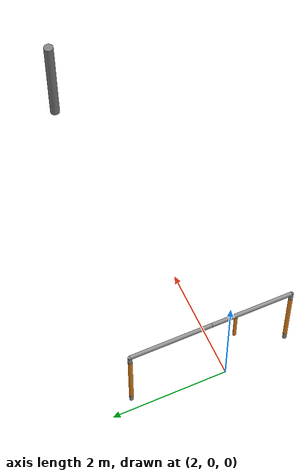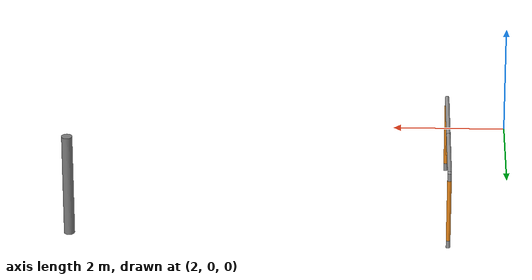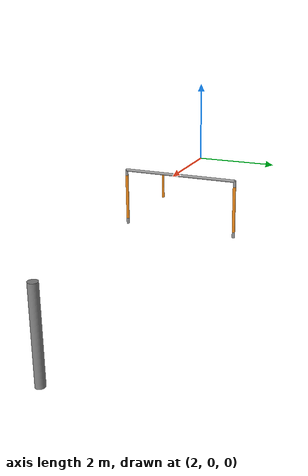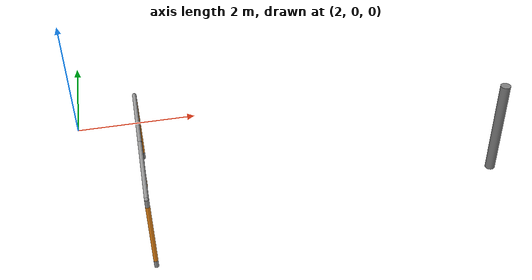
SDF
<sdf version="1.8">
 <world name="competition">
  <scene>
   <grid>false</grid>
   <ambient>0.4 0.4 0.4 1.0</ambient>
   <background>0.0 0.4 0.7 1.0</background>
   <shadows>true</shadows>
  </scene>
  <light type="directional" name="sun">
   <pose>0 0 10 0 0 0</pose>
   <diffuse>0.8 0.8 0.8 1</diffuse>
   <specular>0.2 0.2 0.2 1</specular>
   <direction>-0.5 0.1 -0.9</direction>
   <attenuation>
    <range>1000</range>
    <constant>0.9</constant>
    <linear>0.01</linear>
    <quadratic>0.001</quadratic>
   </attenuation>
  </light>
  <plugin filename="gz-sim-physics-system" name="gz::sim::systems::Physics"/>
  <plugin filename="gz-sim-user-commands-system" name="gz::sim::systems::UserCommands"/>
  <plugin filename="gz-sim-scene-broadcaster-system" name="gz::sim::systems::SceneBroadcaster"/>
  <plugin filename="gz-sim-sensors-system" name="gz::sim::systems::Sensors">
   <render_engine>ogre2</render_engine>
  </plugin>
  <plugin filename="gz-sim-imu-system" name="gz::sim::systems::Imu"/>
  <plugin filename="gz-sim-buoyancy-system" name="gz::sim::systems::Buoyancy">
   <graded_buoyancy>
    <default_density>1025</default_density>
    <density_change><above_depth>0</above_depth><density>1.125</density></density_change>
   </graded_buoyancy>
  </plugin>
  <physics name="1ms" type="dart">
   <max_step_size>0.02</max_step_size>
   <real_time_factor>1</real_time_factor>
  </physics>
  <include><pose>3 -1 -0.25 0 0 0</pose><uri>model://prequalification_gate</uri></include>
  <include><pose>10 0 -1.25 0 0 0</pose><uri>model://prequalification_marker</uri></include>
 </world>
</sdf>

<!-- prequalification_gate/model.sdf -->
<sdf version='1.7'>
  <model name='gate'>
    <link name='component_rt'>
      <inertial>
        <mass>10</mass>
        <inertia>
          <ixx>0.145833</ixx>
          <ixy>0</ixy>
          <ixz>0</ixz>
          <iyy>0.145833</iyy>
          <iyz>0</iyz>
          <izz>0.125</izz>
        </inertia>
        <pose>0 0 0 0 -0 0</pose>
      </inertial>
      <pose>0 1.52 -0.000146 1.5707 -0 0</pose>
      <self_collide>0</self_collide>
      <enable_wind>0</enable_wind>
      <kinematic>0</kinematic>
      <gravity>0</gravity>
      <visual name='visual'>
        <pose>0 0 0 0 -0 0</pose>
        <geometry>
          <cylinder>
            <radius>0.0381</radius>
            <length>1.52</length>
          </cylinder>
        </geometry>
        <material>
          <lighting>1</lighting>
          <script>
            <uri>file://media/materials/scripts/gazebo.material</uri>
            <name>Gazebo/Grey</name>
          </script>
          <shader type='pixel'/>
          <emissive>0 0 0 1</emissive>
        </material>
        <transparency>0</transparency>
        <cast_shadows>1</cast_shadows>
      </visual>
      <collision name='collision'>
        <laser_retro>0</laser_retro>
        <max_contacts>10</max_contacts>
        <pose>0 0 0 0 -0 0</pose>
        <geometry>
          <cylinder>
            <radius>0.0381</radius>
            <length>1.52</length>
          </cylinder>
        </geometry>
        <surface>
          <friction>
            <ode>
              <mu>1</mu>
              <mu2>1</mu2>
              <fdir1>0 0 0</fdir1>
              <slip1>0</slip1>
              <slip2>0</slip2>
            </ode>
            <torsional>
              <coefficient>1</coefficient>
              <patch_radius>0</patch_radius>
              <surface_radius>0</surface_radius>
              <use_patch_radius>1</use_patch_radius>
              <ode>
                <slip>0</slip>
              </ode>
            </torsional>
          </friction>
          <bounce>
            <restitution_coefficient>0</restitution_coefficient>
            <threshold>1e+06</threshold>
          </bounce>
          <contact>
            <collide_without_contact>0</collide_without_contact>
            <collide_without_contact_bitmask>1</collide_without_contact_bitmask>
            <collide_bitmask>1</collide_bitmask>
            <ode>
              <soft_cfm>0</soft_cfm>
              <soft_erp>0.2</soft_erp>
              <kp>1e+13</kp>
              <kd>1</kd>
              <max_vel>0.01</max_vel>
              <min_depth>0</min_depth>
            </ode>
            <bullet>
              <split_impulse>1</split_impulse>
              <split_impulse_penetration_threshold>-0.01</split_impulse_penetration_threshold>
              <soft_cfm>0</soft_cfm>
              <soft_erp>0.2</soft_erp>
              <kp>1e+13</kp>
              <kd>1</kd>
            </bullet>
          </contact>
        </surface>
      </collision>
    </link>
    <link name='component_lb'>
      <inertial>
        <mass>10</mass>
        <inertia>
          <ixx>0.145833</ixx>
          <ixy>0</ixy>
          <ixz>0</ixz>
          <iyy>0.145833</iyy>
          <iyz>0</iyz>
          <izz>0.125</izz>
        </inertia>
        <pose>0 0 0 0 -0 0</pose>
      </inertial>
      <pose>-0 -0.760073 -0.759927 0 -0 0</pose>
      <self_collide>0</self_collide>
      <enable_wind>0</enable_wind>
      <kinematic>0</kinematic>
      <gravity>0</gravity>
      <visual name='visual'>
        <pose>0 0 0 0 -0 0</pose>
        <geometry>
          <cylinder>
            <radius>0.0381</radius>
            <length>1.52</length>
          </cylinder>
        </geometry>
        <material>
          <lighting>1</lighting>
          <script>
            <uri>file://media/materials/scripts/gazebo.material</uri>
            <name>Gazebo/Grey</name>
          </script>
          <shader type='pixel'/>
          <emissive>0 0 0 1</emissive>
        </material>
        <transparency>0</transparency>
        <cast_shadows>1</cast_shadows>
      </visual>
      <collision name='collision'>
        <laser_retro>0</laser_retro>
        <max_contacts>10</max_contacts>
        <pose>0 0 0 0 -0 0</pose>
        <geometry>
          <cylinder>
            <radius>0.0381</radius>
            <length>1.52</length>
          </cylinder>
        </geometry>
        <surface>
          <friction>
            <ode>
              <mu>1</mu>
              <mu2>1</mu2>
              <fdir1>0 0 0</fdir1>
              <slip1>0</slip1>
              <slip2>0</slip2>
            </ode>
            <torsional>
              <coefficient>1</coefficient>
              <patch_radius>0</patch_radius>
              <surface_radius>0</surface_radius>
              <use_patch_radius>1</use_patch_radius>
              <ode>
                <slip>0</slip>
              </ode>
            </torsional>
          </friction>
          <bounce>
            <restitution_coefficient>0</restitution_coefficient>
            <threshold>1e+06</threshold>
          </bounce>
          <contact>
            <collide_without_contact>0</collide_without_contact>
            <collide_without_contact_bitmask>1</collide_without_contact_bitmask>
            <collide_bitmask>1</collide_bitmask>
            <ode>
              <soft_cfm>0</soft_cfm>
              <soft_erp>0.2</soft_erp>
              <kp>1e+13</kp>
              <kd>1</kd>
              <max_vel>0.01</max_vel>
              <min_depth>0</min_depth>
            </ode>
            <bullet>
              <split_impulse>1</split_impulse>
              <split_impulse_penetration_threshold>-0.01</split_impulse_penetration_threshold>
              <soft_cfm>0</soft_cfm>
              <soft_erp>0.2</soft_erp>
              <kp>1e+13</kp>
              <kd>1</kd>
            </bullet>
          </contact>
        </surface>
      </collision>
    </link>
    <link name='component_lt'>
      <inertial>
        <mass>10</mass>
        <inertia>
          <ixx>0.145833</ixx>
          <ixy>0</ixy>
          <ixz>0</ixz>
          <iyy>0.145833</iyy>
          <iyz>0</iyz>
          <izz>0.125</izz>
        </inertia>
        <pose>0 0 0 0 -0 0</pose>
      </inertial>
      <pose>0 0 0 1.5707 -0 0</pose>
      <self_collide>0</self_collide>
      <enable_wind>0</enable_wind>
      <kinematic>0</kinematic>
      <gravity>0</gravity>
      <visual name='visual'>
        <pose>0 0 0 0 -0 0</pose>
        <geometry>
          <cylinder>
            <radius>0.0381</radius>
            <length>1.52</length>
          </cylinder>
        </geometry>
        <material>
          <lighting>1</lighting>
          <script>
            <uri>file://media/materials/scripts/gazebo.material</uri>
            <name>Gazebo/Grey</name>
          </script>
          <shader type='pixel'/>
          <emissive>0 0 0 1</emissive>
        </material>
        <transparency>0</transparency>
        <cast_shadows>1</cast_shadows>
      </visual>
      <collision name='collision'>
        <laser_retro>0</laser_retro>
        <max_contacts>10</max_contacts>
        <pose>0 0 0 0 -0 0</pose>
        <geometry>
          <cylinder>
            <radius>0.0381</radius>
            <length>1.52</length>
          </cylinder>
        </geometry>
        <surface>
          <friction>
            <ode>
              <mu>1</mu>
              <mu2>1</mu2>
              <fdir1>0 0 0</fdir1>
              <slip1>0</slip1>
              <slip2>0</slip2>
            </ode>
            <torsional>
              <coefficient>1</coefficient>
              <patch_radius>0</patch_radius>
              <surface_radius>0</surface_radius>
              <use_patch_radius>1</use_patch_radius>
              <ode>
                <slip>0</slip>
              </ode>
            </torsional>
          </friction>
          <bounce>
            <restitution_coefficient>0</restitution_coefficient>
            <threshold>1e+06</threshold>
          </bounce>
          <contact>
            <collide_without_contact>0</collide_without_contact>
            <collide_without_contact_bitmask>1</collide_without_contact_bitmask>
            <collide_bitmask>1</collide_bitmask>
            <ode>
              <soft_cfm>0</soft_cfm>
              <soft_erp>0.2</soft_erp>
              <kp>1e+13</kp>
              <kd>1</kd>
              <max_vel>0.01</max_vel>
              <min_depth>0</min_depth>
            </ode>
            <bullet>
              <split_impulse>1</split_impulse>
              <split_impulse_penetration_threshold>-0.01</split_impulse_penetration_threshold>
              <soft_cfm>0</soft_cfm>
              <soft_erp>0.2</soft_erp>
              <kp>1e+13</kp>
              <kd>1</kd>
            </bullet>
          </contact>
        </surface>
      </collision>
    </link>
    <link name='component_rb'>
      <inertial>
        <mass>10</mass>
        <inertia>
          <ixx>0.145833</ixx>
          <ixy>0</ixy>
          <ixz>0</ixz>
          <iyy>0.145833</iyy>
          <iyz>0</iyz>
          <izz>0.125</izz>
        </inertia>
        <pose>0 0 0 0 -0 0</pose>
      </inertial>
      <pose>0 2.27993 -0.76022 0 -0 0</pose>
      <self_collide>0</self_collide>
      <enable_wind>0</enable_wind>
      <kinematic>0</kinematic>
      <gravity>0</gravity>
      <visual name='visual'>
        <pose>0 0 0 0 -0 0</pose>
        <geometry>
          <cylinder>
            <radius>0.0381</radius>
            <length>1.52</length>
          </cylinder>
        </geometry>
        <material>
          <lighting>1</lighting>
          <script>
            <uri>file://media/materials/scripts/gazebo.material</uri>
            <name>Gazebo/Grey</name>
          </script>
          <shader type='pixel'/>
          <emissive>0 0 0 1</emissive>
        </material>
        <transparency>0</transparency>
        <cast_shadows>1</cast_shadows>
      </visual>
      <collision name='collision'>
        <laser_retro>0</laser_retro>
        <max_contacts>10</max_contacts>
        <pose>0 0 0 0 -0 0</pose>
        <geometry>
          <cylinder>
            <radius>0.0381</radius>
            <length>1.52</length>
          </cylinder>
        </geometry>
        <surface>
          <friction>
            <ode>
              <mu>1</mu>
              <mu2>1</mu2>
              <fdir1>0 0 0</fdir1>
              <slip1>0</slip1>
              <slip2>0</slip2>
            </ode>
            <torsional>
              <coefficient>1</coefficient>
              <patch_radius>0</patch_radius>
              <surface_radius>0</surface_radius>
              <use_patch_radius>1</use_patch_radius>
              <ode>
                <slip>0</slip>
              </ode>
            </torsional>
          </friction>
          <bounce>
            <restitution_coefficient>0</restitution_coefficient>
            <threshold>1e+06</threshold>
          </bounce>
          <contact>
            <collide_without_contact>0</collide_without_contact>
            <collide_without_contact_bitmask>1</collide_without_contact_bitmask>
            <collide_bitmask>1</collide_bitmask>
            <ode>
              <soft_cfm>0</soft_cfm>
              <soft_erp>0.2</soft_erp>
              <kp>1e+13</kp>
              <kd>1</kd>
              <max_vel>0.01</max_vel>
              <min_depth>0</min_depth>
            </ode>
            <bullet>
              <split_impulse>1</split_impulse>
              <split_impulse_penetration_threshold>-0.01</split_impulse_penetration_threshold>
              <soft_cfm>0</soft_cfm>
              <soft_erp>0.2</soft_erp>
              <kp>1e+13</kp>
              <kd>1</kd>
            </bullet>
          </contact>
        </surface>
      </collision>
    </link>
    <link name='corner_l'>
      <inertial>
        <mass>1</mass>
        <inertia>
          <ixx>0.1</ixx>
          <ixy>0</ixy>
          <ixz>0</ixz>
          <iyy>0.1</iyy>
          <iyz>0</iyz>
          <izz>0.1</izz>
        </inertia>
        <pose>0 0 0 0 -0 0</pose>
      </inertial>
      <pose>-0 2.28 -0.000219 1.5707 -0 0</pose>
      <gravity>0</gravity>
      <self_collide>0</self_collide>
      <kinematic>0</kinematic>
      <enable_wind>0</enable_wind>
      <visual name='visual'>
        <pose>0 0 0 0 -0 0</pose>
        <geometry>
          <sphere>
            <radius>0.038</radius>
          </sphere>
        </geometry>
        <material>
          <lighting>1</lighting>
          <script>
            <uri>file://media/materials/scripts/gazebo.material</uri>
            <name>Gazebo/Grey</name>
          </script>
          <shader type='pixel'/>
          <emissive>0 0 0 1</emissive>
        </material>
        <transparency>0</transparency>
        <cast_shadows>1</cast_shadows>
      </visual>
      <collision name='collision'>
        <laser_retro>0</laser_retro>
        <max_contacts>10</max_contacts>
        <pose>0 0 0 0 -0 0</pose>
        <geometry>
          <sphere>
            <radius>0.0381</radius>
          </sphere>
        </geometry>
        <surface>
          <friction>
            <ode>
              <mu>1</mu>
              <mu2>1</mu2>
              <fdir1>0 0 0</fdir1>
              <slip1>0</slip1>
              <slip2>0</slip2>
            </ode>
            <torsional>
              <coefficient>1</coefficient>
              <patch_radius>0</patch_radius>
              <surface_radius>0</surface_radius>
              <use_patch_radius>1</use_patch_radius>
              <ode>
                <slip>0</slip>
              </ode>
            </torsional>
          </friction>
          <bounce>
            <restitution_coefficient>0</restitution_coefficient>
            <threshold>1e+06</threshold>
          </bounce>
          <contact>
            <collide_without_contact>0</collide_without_contact>
            <collide_without_contact_bitmask>1</collide_without_contact_bitmask>
            <collide_bitmask>1</collide_bitmask>
            <ode>
              <soft_cfm>0</soft_cfm>
              <soft_erp>0.2</soft_erp>
              <kp>1e+13</kp>
              <kd>1</kd>
              <max_vel>0.01</max_vel>
              <min_depth>0</min_depth>
            </ode>
            <bullet>
              <split_impulse>1</split_impulse>
              <split_impulse_penetration_threshold>-0.01</split_impulse_penetration_threshold>
              <soft_cfm>0</soft_cfm>
              <soft_erp>0.2</soft_erp>
              <kp>1e+13</kp>
              <kd>1</kd>
            </bullet>
          </contact>
        </surface>
      </collision>
    </link>
    <link name='corner_r'>
      <inertial>
        <mass>1</mass>
        <inertia>
          <ixx>0.1</ixx>
          <ixy>0</ixy>
          <ixz>0</ixz>
          <iyy>0.1</iyy>
          <iyz>0</iyz>
          <izz>0.1</izz>
        </inertia>
        <pose>0 0 0 0 -0 0</pose>
      </inertial>
      <pose>0 -0.76 -0 0 -0 0</pose>
      <gravity>0</gravity>
      <self_collide>0</self_collide>
      <kinematic>0</kinematic>
      <enable_wind>0</enable_wind>
      <visual name='visual'>
        <pose>0 0 0 0 -0 0</pose>
        <geometry>
          <sphere>
            <radius>0.038</radius>
          </sphere>
        </geometry>
        <material>
          <lighting>1</lighting>
          <script>
            <uri>file://media/materials/scripts/gazebo.material</uri>
            <name>Gazebo/Grey</name>
          </script>
          <shader type='pixel'/>
          <emissive>0 0 0 1</emissive>
        </material>
        <transparency>0</transparency>
        <cast_shadows>1</cast_shadows>
      </visual>
      <collision name='collision'>
        <laser_retro>0</laser_retro>
        <max_contacts>10</max_contacts>
        <pose>0 0 0 0 -0 0</pose>
        <geometry>
          <sphere>
            <radius>0.0381</radius>
          </sphere>
        </geometry>
        <surface>
          <friction>
            <ode>
              <mu>1</mu>
              <mu2>1</mu2>
              <fdir1>0 0 0</fdir1>
              <slip1>0</slip1>
              <slip2>0</slip2>
            </ode>
            <torsional>
              <coefficient>1</coefficient>
              <patch_radius>0</patch_radius>
              <surface_radius>0</surface_radius>
              <use_patch_radius>1</use_patch_radius>
              <ode>
                <slip>0</slip>
              </ode>
            </torsional>
          </friction>
          <bounce>
            <restitution_coefficient>0</restitution_coefficient>
            <threshold>1e+06</threshold>
          </bounce>
          <contact>
            <collide_without_contact>0</collide_without_contact>
            <collide_without_contact_bitmask>1</collide_without_contact_bitmask>
            <collide_bitmask>1</collide_bitmask>
            <ode>
              <soft_cfm>0</soft_cfm>
              <soft_erp>0.2</soft_erp>
              <kp>1e+13</kp>
              <kd>1</kd>
              <max_vel>0.01</max_vel>
              <min_depth>0</min_depth>
            </ode>
            <bullet>
              <split_impulse>1</split_impulse>
              <split_impulse_penetration_threshold>-0.01</split_impulse_penetration_threshold>
              <soft_cfm>0</soft_cfm>
              <soft_erp>0.2</soft_erp>
              <kp>1e+13</kp>
              <kd>1</kd>
            </bullet>
          </contact>
        </surface>
      </collision>
    </link>
    <link name='jacket_l'>
      <inertial>
        <mass>10</mass>
        <inertia>
          <ixx>0.145833</ixx>
          <ixy>0</ixy>
          <ixz>0</ixz>
          <iyy>0.145833</iyy>
          <iyz>0</iyz>
          <izz>0.125</izz>
        </inertia>
        <pose>0 0 0 0 -0 0</pose>
      </inertial>
      <pose>-0 -0.760073 -0.759927 0 -0 0</pose>
      <self_collide>0</self_collide>
      <enable_wind>0</enable_wind>
      <kinematic>0</kinematic>
      <gravity>0</gravity>
      <visual name='visual'>
        <pose>0 0 0 0 -0 0</pose>
        <geometry>
          <cylinder>
            <radius>0.039</radius>
            <length>1.219</length>
          </cylinder>
        </geometry>
        <material>
          <lighting>1</lighting>
          <script>
            <uri>file://media/materials/scripts/gazebo.material</uri>
            <name>Gazebo/Orange</name>
          </script>
          <shader type='pixel'/>
          <emissive>0 0 0 1</emissive>
        </material>
        <transparency>0</transparency>
        <cast_shadows>1</cast_shadows>
      </visual>
      <collision name='collision'>
        <laser_retro>0</laser_retro>
        <max_contacts>10</max_contacts>
        <pose>0 0 0 0 -0 0</pose>
        <geometry>
          <cylinder>
            <radius>0.001</radius>
            <length>0.001</length>
          </cylinder>
        </geometry>
        <surface>
          <friction>
            <ode>
              <mu>1</mu>
              <mu2>1</mu2>
              <fdir1>0 0 0</fdir1>
              <slip1>0</slip1>
              <slip2>0</slip2>
            </ode>
            <torsional>
              <coefficient>1</coefficient>
              <patch_radius>0</patch_radius>
              <surface_radius>0</surface_radius>
              <use_patch_radius>1</use_patch_radius>
              <ode>
                <slip>0</slip>
              </ode>
            </torsional>
          </friction>
          <bounce>
            <restitution_coefficient>0</restitution_coefficient>
            <threshold>1e+06</threshold>
          </bounce>
          <contact>
            <collide_without_contact>0</collide_without_contact>
            <collide_without_contact_bitmask>1</collide_without_contact_bitmask>
            <collide_bitmask>1</collide_bitmask>
            <ode>
              <soft_cfm>0</soft_cfm>
              <soft_erp>0.2</soft_erp>
              <kp>1e+13</kp>
              <kd>1</kd>
              <max_vel>0.01</max_vel>
              <min_depth>0</min_depth>
            </ode>
            <bullet>
              <split_impulse>1</split_impulse>
              <split_impulse_penetration_threshold>-0.01</split_impulse_penetration_threshold>
              <soft_cfm>0</soft_cfm>
              <soft_erp>0.2</soft_erp>
              <kp>1e+13</kp>
              <kd>1</kd>
            </bullet>
          </contact>
        </surface>
      </collision>
    </link>
    <link name='jacket_r'>
      <inertial>
        <mass>1</mass>
        <inertia>
          <ixx>0.145833</ixx>
          <ixy>0</ixy>
          <ixz>0</ixz>
          <iyy>0.145833</iyy>
          <iyz>0</iyz>
          <izz>0.125</izz>
        </inertia>
        <pose>0 0 0 0 -0 0</pose>
      </inertial>
      <pose>0 2.27993 -0.76022 0 -0 0</pose>
      <self_collide>0</self_collide>
      <enable_wind>0</enable_wind>
      <kinematic>0</kinematic>
      <gravity>0</gravity>
      <visual name='visual'>
        <pose>0 0 0 0 -0 0</pose>
        <geometry>
          <cylinder>
            <radius>0.039</radius>
            <length>1.219</length>
          </cylinder>
        </geometry>
        <material>
          <lighting>1</lighting>
          <script>
            <uri>file://media/materials/scripts/gazebo.material</uri>
            <name>Gazebo/Orange</name>
          </script>
          <shader type='pixel'/>
          <emissive>0 0 0 1</emissive>
        </material>
        <transparency>0</transparency>
        <cast_shadows>1</cast_shadows>
      </visual>
      <collision name='collision'>
        <laser_retro>0</laser_retro>
        <max_contacts>10</max_contacts>
        <pose>0 0 0 0 -0 0</pose>
        <geometry>
          <cylinder>
            <radius>0.001</radius>
            <length>0.001</length>
          </cylinder>
        </geometry>
        <surface>
          <friction>
            <ode>
              <mu>1</mu>
              <mu2>1</mu2>
              <fdir1>0 0 0</fdir1>
              <slip1>0</slip1>
              <slip2>0</slip2>
            </ode>
            <torsional>
              <coefficient>1</coefficient>
              <patch_radius>0</patch_radius>
              <surface_radius>0</surface_radius>
              <use_patch_radius>1</use_patch_radius>
              <ode>
                <slip>0</slip>
              </ode>
            </torsional>
          </friction>
          <bounce>
            <restitution_coefficient>0</restitution_coefficient>
            <threshold>1e+06</threshold>
          </bounce>
          <contact>
            <collide_without_contact>0</collide_without_contact>
            <collide_without_contact_bitmask>1</collide_without_contact_bitmask>
            <collide_bitmask>1</collide_bitmask>
            <ode>
              <soft_cfm>0</soft_cfm>
              <soft_erp>0.2</soft_erp>
              <kp>1e+13</kp>
              <kd>1</kd>
              <max_vel>0.01</max_vel>
              <min_depth>0</min_depth>
            </ode>
            <bullet>
              <split_impulse>1</split_impulse>
              <split_impulse_penetration_threshold>-0.01</split_impulse_penetration_threshold>
              <soft_cfm>0</soft_cfm>
              <soft_erp>0.2</soft_erp>
              <kp>1e+13</kp>
              <kd>1</kd>
            </bullet>
          </contact>
        </surface>
      </collision>
    </link>
    <link name='center_link'>
      <inertial>
        <mass>1</mass>
        <inertia>
          <ixx>0.145833</ixx>
          <ixy>0</ixy>
          <ixz>0</ixz>
          <iyy>0.145833</iyy>
          <iyz>0</iyz>
          <izz>0.125</izz>
        </inertia>
        <pose>0 0 0 0 -0 0</pose>
      </inertial>
      <pose>-0 0.304767 -0.340029 3.1414 -0 0</pose>
      <gravity>0</gravity>
      <self_collide>0</self_collide>
      <kinematic>0</kinematic>
      <enable_wind>0</enable_wind>
      <visual name='visual'>
        <pose>0 0 0 0 -0 0</pose>
        <geometry>
          <cylinder>
            <radius>0.03</radius>
            <length>0.6096</length>
          </cylinder>
        </geometry>
        <material>
          <lighting>1</lighting>
          <script>
            <uri>file://media/materials/scripts/gazebo.material</uri>
            <name>Gazebo/Orange</name>
          </script>
          <shader type='pixel'/>
          <emissive>0 0 0 1</emissive>
        </material>
        <transparency>0</transparency>
        <cast_shadows>1</cast_shadows>
      </visual>
      <collision name='collision'>
        <laser_retro>0</laser_retro>
        <max_contacts>10</max_contacts>
        <pose>0 0 0 0 -0 0</pose>
        <geometry>
          <cylinder>
            <radius>0.03</radius>
            <length>0.6096</length>
          </cylinder>
        </geometry>
        <surface>
          <friction>
            <ode>
              <mu>1</mu>
              <mu2>1</mu2>
              <fdir1>0 0 0</fdir1>
              <slip1>0</slip1>
              <slip2>0</slip2>
            </ode>
            <torsional>
              <coefficient>1</coefficient>
              <patch_radius>0</patch_radius>
              <surface_radius>0</surface_radius>
              <use_patch_radius>1</use_patch_radius>
              <ode>
                <slip>0</slip>
              </ode>
            </torsional>
          </friction>
          <bounce>
            <restitution_coefficient>0</restitution_coefficient>
            <threshold>1e+06</threshold>
          </bounce>
          <contact>
            <collide_without_contact>0</collide_without_contact>
            <collide_without_contact_bitmask>1</collide_without_contact_bitmask>
            <collide_bitmask>1</collide_bitmask>
            <ode>
              <soft_cfm>0</soft_cfm>
              <soft_erp>0.2</soft_erp>
              <kp>1e+13</kp>
              <kd>1</kd>
              <max_vel>0.01</max_vel>
              <min_depth>0</min_depth>
            </ode>
            <bullet>
              <split_impulse>1</split_impulse>
              <split_impulse_penetration_threshold>-0.01</split_impulse_penetration_threshold>
              <soft_cfm>0</soft_cfm>
              <soft_erp>0.2</soft_erp>
              <kp>1e+13</kp>
              <kd>1</kd>
            </bullet>
          </contact>
        </surface>
      </collision>
    </link>
    <joint name='center_joint' type='fixed'>
      <parent>component_lt</parent>
      <child>center_link</child>
      <pose>0 0 0 0 -0 0</pose>
      <physics>
        <ode>
          <limit>
            <cfm>0</cfm>
            <erp>0.2</erp>
          </limit>
          <suspension>
            <cfm>0</cfm>
            <erp>0.2</erp>
          </suspension>
        </ode>
      </physics>
    </joint>
    <joint name='component_lt_lb' type='fixed'>
      <parent>component_lt</parent>
      <child>component_lb</child>
      <pose>0 0 0 0 -0 0</pose>
      <physics>
        <ode>
          <limit>
            <cfm>0</cfm>
            <erp>0.2</erp>
          </limit>
          <suspension>
            <cfm>0</cfm>
            <erp>0.2</erp>
          </suspension>
        </ode>
      </physics>
    </joint>
    <joint name='component_lt_rt' type='fixed'>
      <parent>component_lt</parent>
      <child>component_rt</child>
      <pose>0 0 0 0 -0 0</pose>
      <physics>
        <ode>
          <limit>
            <cfm>0</cfm>
            <erp>0.2</erp>
          </limit>
          <suspension>
            <cfm>0</cfm>
            <erp>0.2</erp>
          </suspension>
        </ode>
      </physics>
    </joint>
    <joint name='component_rt_rb' type='fixed'>
      <parent>component_rt</parent>
      <child>component_rb</child>
      <pose>0 0 0 0 -0 0</pose>
      <physics>
        <ode>
          <limit>
            <cfm>0</cfm>
            <erp>0.2</erp>
          </limit>
          <suspension>
            <cfm>0</cfm>
            <erp>0.2</erp>
          </suspension>
        </ode>
      </physics>
    </joint>
    <joint name='corner_joint_l' type='fixed'>
      <parent>component_lt</parent>
      <child>corner_l</child>
      <pose>0 0 0 0 -0 0</pose>
      <physics>
        <ode>
          <limit>
            <cfm>0</cfm>
            <erp>0.2</erp>
          </limit>
          <suspension>
            <cfm>0</cfm>
            <erp>0.2</erp>
          </suspension>
        </ode>
      </physics>
    </joint>
    <joint name='corner_joint_r' type='fixed'>
      <parent>component_rt</parent>
      <child>corner_r</child>
      <pose>0 0 0 0 -0 0</pose>
      <physics>
        <ode>
          <limit>
            <cfm>0</cfm>
            <erp>0.2</erp>
          </limit>
          <suspension>
            <cfm>0</cfm>
            <erp>0.2</erp>
          </suspension>
        </ode>
      </physics>
    </joint>
    <joint name='jacket_joint_l' type='fixed'>
      <parent>component_lb</parent>
      <child>jacket_l</child>
      <pose>0 0 0 0 -0 0</pose>
      <physics>
        <ode>
          <limit>
            <cfm>0</cfm>
            <erp>0.2</erp>
          </limit>
          <suspension>
            <cfm>0</cfm>
            <erp>0.2</erp>
          </suspension>
        </ode>
      </physics>
    </joint>
    <joint name='jacket_joint_r' type='fixed'>
      <parent>component_rb</parent>
      <child>jacket_r</child>
      <pose>0 0 0 0 -0 0</pose>
      <physics>
        <ode>
          <limit>
            <cfm>0</cfm>
            <erp>0.2</erp>
          </limit>
          <suspension>
            <cfm>0</cfm>
            <erp>0.2</erp>
          </suspension>
        </ode>
      </physics>
    </joint>
    <static>1</static>
    <allow_auto_disable>1</allow_auto_disable>
  </model>
</sdf>

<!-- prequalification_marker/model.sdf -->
<sdf version='1.7'>
  <model name='prequalification_marker'>
    <link name='cylinder_link'>
      <inertial>
        <mass>10</mass>
        <inertia>
          <ixx>8.125</ixx>
          <ixy>0</ixy>
          <ixz>0</ixz>
          <iyy>8.125</iyy>
          <iyz>0</iyz>
          <izz>1.25</izz>
        </inertia>
        <pose>0 0 0 0 -0 0</pose>
      </inertial>
      <pose>0 0 0 0 -0 0</pose>
      <self_collide>0</self_collide>
      <enable_wind>0</enable_wind>
      <kinematic>0</kinematic>
      <gravity>0</gravity>
      <visual name='visual'>
        <pose>0 0 0 0 -0 0</pose>
        <geometry>
          <cylinder>
            <radius>0.1</radius>
            <length>2</length>
          </cylinder>
        </geometry>
        <material>
          <lighting>1</lighting>
          <ambient>0.5 0.5 0.5 1</ambient><diffuse>0.5 0.5 0.5 1</diffuse>
          <shader type='pixel'/>
          <emissive>0 0 0 1</emissive>
        </material>
        <transparency>0</transparency>
        <cast_shadows>1</cast_shadows>
      </visual>
      <collision name='collision'>
        <laser_retro>0</laser_retro>
        <max_contacts>10</max_contacts>
        <pose>0 0 0 0 -0 0</pose>
        <geometry>
          <cylinder>
            <radius>0.5</radius>
            <length>3</length>
          </cylinder>
        </geometry>
        <surface>
          <friction>
            <ode>
              <mu>1</mu>
              <mu2>1</mu2>
              <fdir1>0 0 0</fdir1>
              <slip1>0</slip1>
              <slip2>0</slip2>
            </ode>
            <torsional>
              <coefficient>1</coefficient>
              <patch_radius>0</patch_radius>
              <surface_radius>0</surface_radius>
              <use_patch_radius>1</use_patch_radius>
              <ode>
                <slip>0</slip>
              </ode>
            </torsional>
          </friction>
          <bounce>
            <restitution_coefficient>0</restitution_coefficient>
            <threshold>1e+06</threshold>
          </bounce>
          <contact>
            <collide_without_contact>0</collide_without_contact>
            <collide_without_contact_bitmask>1</collide_without_contact_bitmask>
            <collide_bitmask>1</collide_bitmask>
            <ode>
              <soft_cfm>0</soft_cfm>
              <soft_erp>0.2</soft_erp>
              <kp>1e+13</kp>
              <kd>1</kd>
              <max_vel>0.01</max_vel>
              <min_depth>0</min_depth>
            </ode>
            <bullet>
              <split_impulse>1</split_impulse>
              <split_impulse_penetration_threshold>-0.01</split_impulse_penetration_threshold>
              <soft_cfm>0</soft_cfm>
              <soft_erp>0.2</soft_erp>
              <kp>1e+13</kp>
              <kd>1</kd>
            </bullet>
          </contact>
        </surface>
      </collision>
    </link>
    <static>1</static>
    <allow_auto_disable>1</allow_auto_disable>
  </model>
</sdf>
